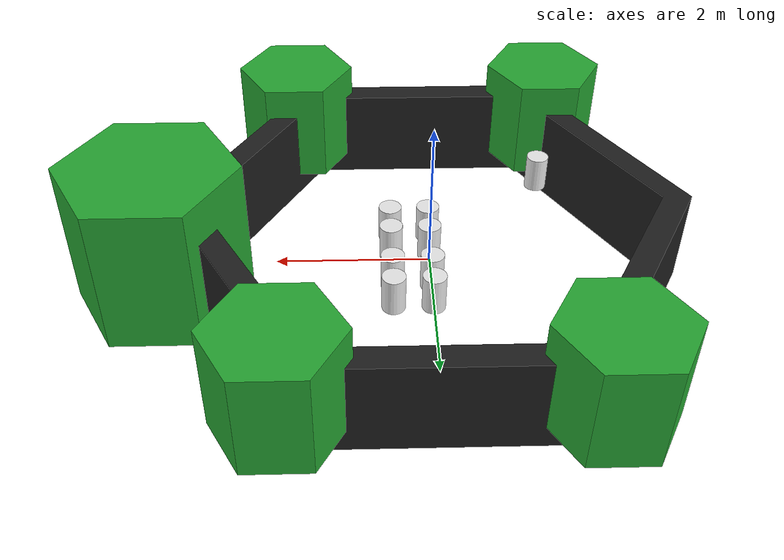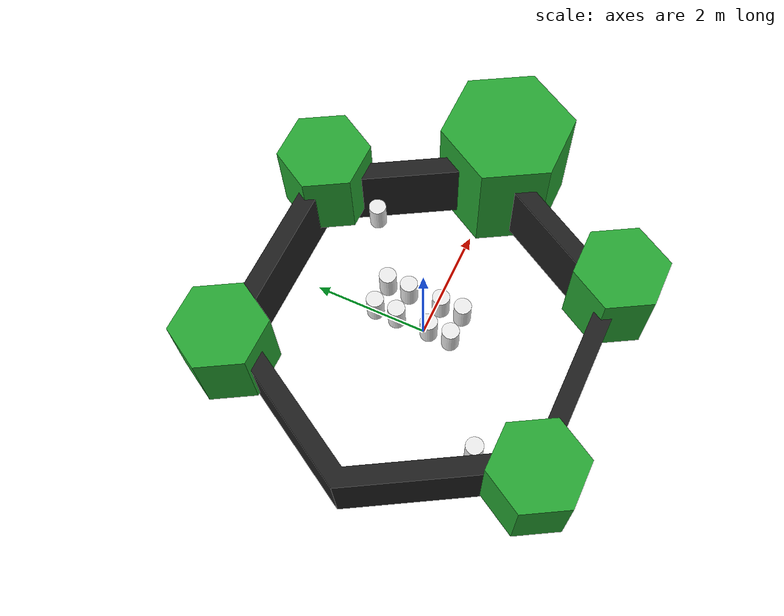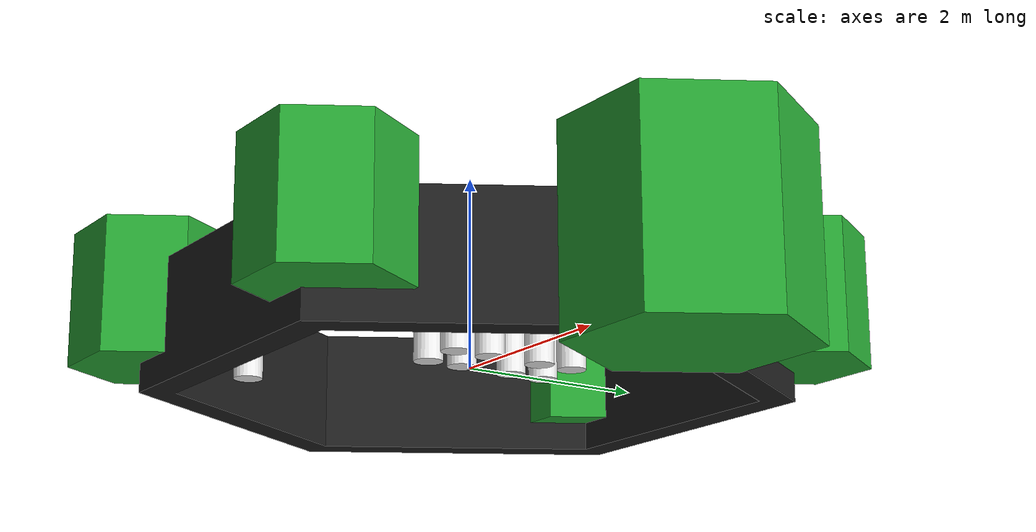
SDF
<?xml version='1.0' encoding='ASCII'?>
<sdf version="1.5">
  <!-- Draw Circle -->
  <model name="ros_symbol">
    <static>1</static>
    <link name="symbol">
      <collision name="two_one">
        <pose>0 -0.5 0.25 0 0 0</pose>
        <geometry>
          <cylinder>
            <radius>0.15</radius>
            <length>0.5</length>
          </cylinder>
        </geometry>
        <max_contacts>10</max_contacts>
        <surface>
          <bounce/>
          <friction>
            <ode/>
          </friction>
          <contact>
            <ode/>
          </contact>
        </surface>
      </collision>
      <visual name="two_one">
        <pose>0 -0.5 0.25 0 0 0</pose>
        <geometry>
          <cylinder>
            <radius>0.15</radius>
            <length>0.5</length>
          </cylinder>
        </geometry>
        <material>
          <script>
            <uri>file://media/materials/scripts/gazebo.material</uri>
            <name>Gazebo/White</name>
          </script>
        </material>
      </visual>
      <collision name="two_two">
        <pose>0 -0.1 0.25 0 0 0</pose>
        <geometry>
          <cylinder>
            <radius>0.15</radius>
            <length>0.5</length>
          </cylinder>
        </geometry>
        <max_contacts>10</max_contacts>
        <surface>
          <bounce/>
          <friction>
            <ode/>
          </friction>
          <contact>
            <ode/>
          </contact>
        </surface>
      </collision>
      <visual name="two_two">
        <pose>0 -0.1 0.25 0 0 0</pose>
        <geometry>
          <cylinder>
            <radius>0.15</radius>
            <length>0.5</length>
          </cylinder>
        </geometry>
        <material>
          <script>
            <uri>file://media/materials/scripts/gazebo.material</uri>
            <name>Gazebo/White</name>
          </script>
        </material>
      </visual>
      <collision name="two_one_1">
        <pose>0 0.9 0.25 0 0 0</pose>
        <geometry>
          <cylinder>
            <radius>0.15</radius>
            <length>0.5</length>
          </cylinder>
        </geometry>
        <max_contacts>10</max_contacts>
        <surface>
          <bounce/>
          <friction>
            <ode/>
          </friction>
          <contact>
            <ode/>
          </contact>
        </surface>
      </collision>
      <visual name="two_one_1">
        <pose>0 0.9 0.25 0 0 0</pose>
        <geometry>
          <cylinder>
            <radius>0.15</radius>
            <length>0.5</length>
          </cylinder>
        </geometry>
        <material>
          <script>
            <uri>file://media/materials/scripts/gazebo.material</uri>
            <name>Gazebo/White</name>
          </script>
        </material>
      </visual>
      <collision name="two_two_1">
        <pose>0 0.5 0.25 0 0 0</pose>
        <geometry>
          <cylinder>
            <radius>0.15</radius>
            <length>0.5</length>
          </cylinder>
        </geometry>
        <max_contacts>10</max_contacts>
        <surface>
          <bounce/>
          <friction>
            <ode/>
          </friction>
          <contact>
            <ode/>
          </contact>
        </surface>
      </collision>
      <visual name="two_two_1">
        <pose>0 0.5 0.25 0 0 0</pose>
        <geometry>
          <cylinder>
            <radius>0.15</radius>
            <length>0.5</length>
          </cylinder>
        </geometry>
        <material>
          <script>
            <uri>file://media/materials/scripts/gazebo.material</uri>
            <name>Gazebo/White</name>
          </script>
        </material>
      </visual>
      <collision name="two_one_2">
        <pose>0.5 -0.5 0.25 0 0 0</pose>
        <geometry>
          <cylinder>
            <radius>0.15</radius>
            <length>0.5</length>
          </cylinder>
        </geometry>
        <max_contacts>10</max_contacts>
        <surface>
          <bounce/>
          <friction>
            <ode/>
          </friction>
          <contact>
            <ode/>
          </contact>
        </surface>
      </collision>
      <visual name="two_one_2">
        <pose>0.5 -0.5 0.25 0 0 0</pose>
        <geometry>
          <cylinder>
            <radius>0.15</radius>
            <length>0.5</length>
          </cylinder>
        </geometry>
        <material>
          <script>
            <uri>file://media/materials/scripts/gazebo.material</uri>
            <name>Gazebo/White</name>
          </script>
        </material>
      </visual>
      <collision name="two_two_2">
        <pose>0.5 -0.1 0.25 0 0 0</pose>
        <geometry>
          <cylinder>
            <radius>0.15</radius>
            <length>0.5</length>
          </cylinder>
        </geometry>
        <max_contacts>10</max_contacts>
        <surface>
          <bounce/>
          <friction>
            <ode/>
          </friction>
          <contact>
            <ode/>
          </contact>
        </surface>
      </collision>
      <visual name="two_two_2">
        <pose>0.5 -0.1 0.25 0 0 0</pose>
        <geometry>
          <cylinder>
            <radius>0.15</radius>
            <length>0.5</length>
          </cylinder>
        </geometry>
        <material>
          <script>
            <uri>file://media/materials/scripts/gazebo.material</uri>
            <name>Gazebo/White</name>
          </script>
        </material>
      </visual>
      <collision name="two_one_3">
        <pose>0.5 0.9 0.25 0 0 0</pose>
        <geometry>
          <cylinder>
            <radius>0.15</radius>
            <length>0.5</length>
          </cylinder>
        </geometry>
        <max_contacts>10</max_contacts>
        <surface>
          <bounce/>
          <friction>
            <ode/>
          </friction>
          <contact>
            <ode/>
          </contact>
        </surface>
      </collision>
      <visual name="two_one_3">
        <pose>0.5 0.9 0.25 0 0 0</pose>
        <geometry>
          <cylinder>
            <radius>0.15</radius>
            <length>0.5</length>
          </cylinder>
        </geometry>
        <material>
          <script>
            <uri>file://media/materials/scripts/gazebo.material</uri>
            <name>Gazebo/White</name>
          </script>
        </material>
      </visual>
      <collision name="two_two_3">
        <pose>0.5 0.5 0.25 0 0 0</pose>
        <geometry>
          <cylinder>
            <radius>0.15</radius>
            <length>0.5</length>
          </cylinder>
        </geometry>
        <max_contacts>10</max_contacts>
        <surface>
          <bounce/>
          <friction>
            <ode/>
          </friction>
          <contact>
            <ode/>
          </contact>
        </surface>
      </collision>
      <visual name="two_two_3">
        <pose>0.5 0.5 0.25 0 0 0</pose>
        <geometry>
          <cylinder>
            <radius>0.15</radius>
            <length>0.5</length>
          </cylinder>
        </geometry>
        <material>
          <script>
            <uri>file://media/materials/scripts/gazebo.material</uri>
            <name>Gazebo/White</name>
          </script>
        </material>
      </visual>
      <collision name="two_two_4">
        <pose>1.65 1.65 0.25 0 0 0</pose>
        <geometry>
          <cylinder>
            <radius>0.15</radius>
            <length>0.5</length>
          </cylinder>
        </geometry>
        <max_contacts>10</max_contacts>
        <surface>
          <bounce/>
          <friction>
            <ode/>
          </friction>
          <contact>
            <ode/>
          </contact>
        </surface>
      </collision>
      <visual name="two_two_4">
        <pose>1.65 1.65 0.25 0 0 0</pose>
        <geometry>
          <cylinder>
            <radius>0.15</radius>
            <length>0.5</length>
          </cylinder>
        </geometry>
        <material>
          <script>
            <uri>file://media/materials/scripts/gazebo.material</uri>
            <name>Gazebo/White</name>
          </script>
        </material>
      </visual>
      <collision name="two_two_5">
        <pose>-1.65 -1.65 0.25 0 0 0</pose>
        <geometry>
          <cylinder>
            <radius>0.15</radius>
            <length>0.5</length>
          </cylinder>
        </geometry>
        <max_contacts>10</max_contacts>
        <surface>
          <bounce/>
          <friction>
            <ode/>
          </friction>
          <contact>
            <ode/>
          </contact>
        </surface>
      </collision>
      <visual name="two_two_5">
        <pose>-1.65 -1.65 0.25 0 0 0</pose>
        <geometry>
          <cylinder>
            <radius>0.15</radius>
            <length>0.5</length>
          </cylinder>
        </geometry>
        <material>
          <script>
            <uri>file://media/materials/scripts/gazebo.material</uri>
            <name>Gazebo/White</name>
          </script>
        </material>
      </visual>
      <!-- Draw Hexagon -->
      <collision name="head">
        <pose>3.5 0 -0.5 0 0 0</pose>
        <geometry>
          <mesh>
            <uri>model://turtlebot3_world/meshes/hexagon.dae</uri>
            <scale>0.8 0.8 0.8</scale>
          </mesh>
        </geometry>
        <max_contacts>10</max_contacts>
        <surface>
          <bounce/>
          <friction>
            <ode/>
          </friction>
          <contact>
            <ode/>
          </contact>
        </surface>
      </collision>
      <visual name="head">
        <pose>3.5 0 -0.5 0 0 0</pose>
        <geometry>
          <mesh>
            <uri>model://turtlebot3_world/meshes/hexagon.dae</uri>
            <scale>0.8 0.8 0.8</scale>
          </mesh>
        </geometry>
        <material>
          <script>
            <uri>file://media/materials/scripts/gazebo.material</uri>
            <name>Gazebo/Green</name>
          </script>
        </material>
      </visual>
      <collision name="left_hand">
        <pose>1.8 2.7 0 0 0 0</pose>
        <geometry>
          <mesh>
            <uri>model://turtlebot3_world/meshes/hexagon.dae</uri>
            <scale>0.55 0.55 0.55</scale>
          </mesh>
        </geometry>
        <max_contacts>10</max_contacts>
        <surface>
          <bounce/>
          <friction>
            <ode/>
          </friction>
          <contact>
            <ode/>
          </contact>
        </surface>
      </collision>
      <visual name="left_hand">
        <pose>1.8 2.7 0 0 0 0</pose>
        <geometry>
          <mesh>
            <uri>model://turtlebot3_world/meshes/hexagon.dae</uri>
            <scale>0.55 0.55 0.55</scale>
          </mesh>
        </geometry>
        <material>
          <script>
            <uri>file://media/materials/scripts/gazebo.material</uri>
            <name>Gazebo/Green</name>
          </script>
        </material>
      </visual>
      <collision name="right_hand">
        <pose>1.8 -2.7 0 0 0 0</pose>
        <geometry>
          <mesh>
            <uri>model://turtlebot3_world/meshes/hexagon.dae</uri>
            <scale>0.55 0.55 0.55</scale>
          </mesh>
        </geometry>
        <max_contacts>10</max_contacts>
        <surface>
          <bounce/>
          <friction>
            <ode/>
          </friction>
          <contact>
            <ode/>
          </contact>
        </surface>
      </collision>
      <visual name="right_hand">
        <pose>1.8 -2.7 0 0 0 0</pose>
        <geometry>
          <mesh>
            <uri>model://turtlebot3_world/meshes/hexagon.dae</uri>
            <scale>0.55 0.55 0.55</scale>
          </mesh>
        </geometry>
        <material>
          <script>
            <uri>file://media/materials/scripts/gazebo.material</uri>
            <name>Gazebo/Green</name>
          </script>
        </material>
      </visual>
      <collision name="left_foot">
        <pose>-1.8 2.7 0 0 0 0</pose>
        <geometry>
          <mesh>
            <uri>model://turtlebot3_world/meshes/hexagon.dae</uri>
            <scale>0.55 0.55 0.55</scale>
          </mesh>
        </geometry>
        <max_contacts>10</max_contacts>
        <surface>
          <bounce/>
          <friction>
            <ode/>
          </friction>
          <contact>
            <ode/>
          </contact>
        </surface>
      </collision>
      <visual name="left_foot">
        <pose>-1.8 2.7 0 0 0 0</pose>
        <geometry>
          <mesh>
            <uri>model://turtlebot3_world/meshes/hexagon.dae</uri>
            <scale>0.55 0.55 0.55</scale>
          </mesh>
        </geometry>
        <material>
          <script>
            <uri>file://media/materials/scripts/gazebo.material</uri>
            <name>Gazebo/Green</name>
          </script>
        </material>
      </visual>
      <collision name="right_foot">
        <pose>-1.8 -2.7 0 0 0 0</pose>
        <geometry>
          <mesh>
            <uri>model://turtlebot3_world/meshes/hexagon.dae</uri>
            <scale>0.55 0.55 0.55</scale>
          </mesh>
        </geometry>
        <max_contacts>10</max_contacts>
        <surface>
          <bounce/>
          <friction>
            <ode/>
          </friction>
          <contact>
            <ode/>
          </contact>
        </surface>
      </collision>
      <visual name="right_foot">
        <pose>-1.8 -2.7 0 0 0 0</pose>
        <geometry>
          <mesh>
            <uri>model://turtlebot3_world/meshes/hexagon.dae</uri>
            <scale>0.55 0.55 0.55</scale>
          </mesh>
        </geometry>
        <material>
          <script>
            <uri>file://media/materials/scripts/gazebo.material</uri>
            <name>Gazebo/Green</name>
          </script>
        </material>
      </visual>
      <!-- Draw Wall -->
      <collision name="body">
        <pose>0 0 -0.3 0 0 -1.5708</pose>
        <geometry>
          <mesh>
            <uri>model://turtlebot3_world/meshes/wall.dae</uri>
            <scale>0.25 0.25 0.25</scale>
          </mesh>
        </geometry>
        <max_contacts>10</max_contacts>
        <surface>
          <bounce/>
          <friction>
            <ode/>
          </friction>
          <contact>
            <ode/>
          </contact>
        </surface>
      </collision>
      <visual name="body">
        <pose>0 0 -0.3 0 0 -1.5708</pose>
        <geometry>
          <mesh>
            <uri>model://turtlebot3_world/meshes/wall.dae</uri>
            <scale>0.25 0.25 0.25</scale>
          </mesh>
        </geometry>
        <material>
          <script>
            <uri>file://media/materials/scripts/gazebo.material</uri>
            <name>Gazebo/FlatBlack</name>
          </script>
        </material>
      </visual>
    </link>
  </model>
</sdf>
